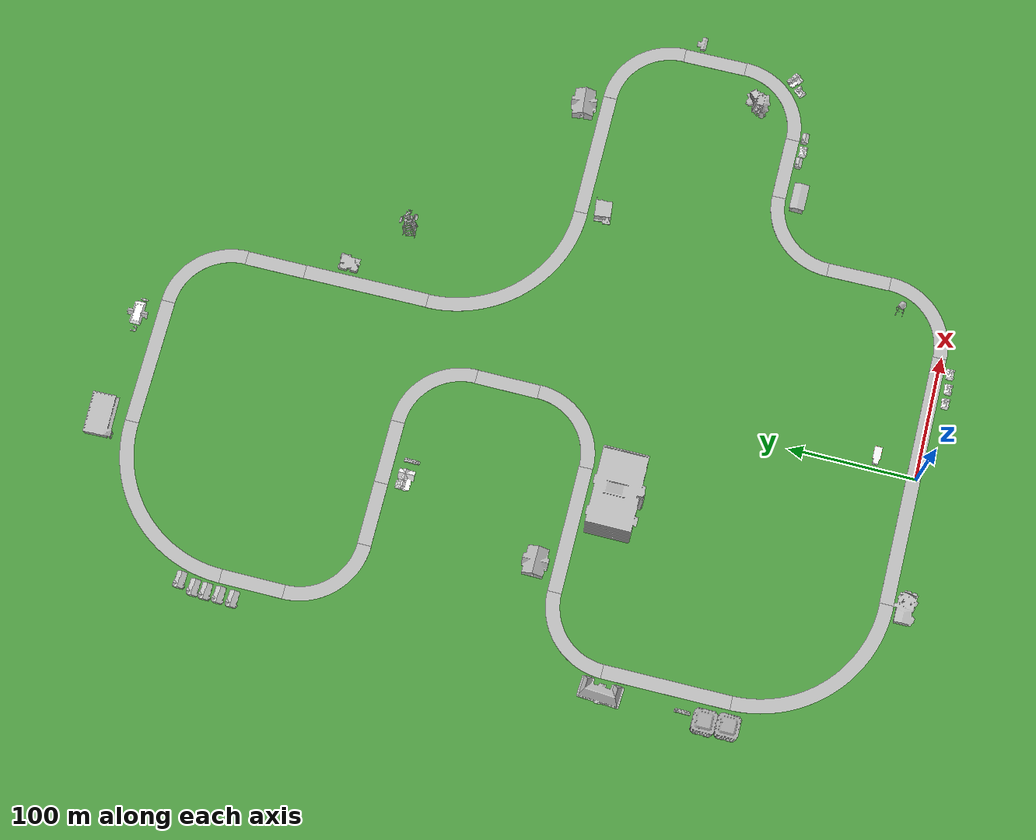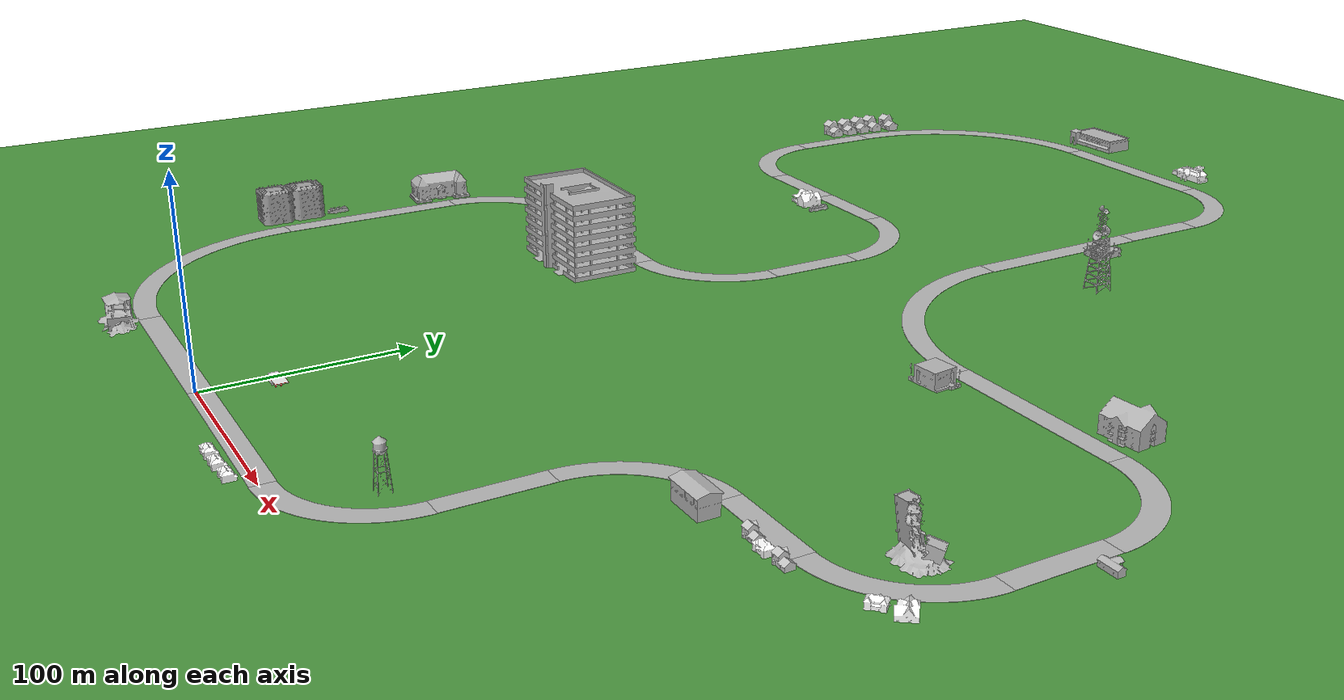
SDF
<sdf version="1.6">
 <world name="default">
  <light name="sun" type="directional">
   <pose>0 0 10 0 -0 0</pose>
   <diffuse>0.8 0.8 0.8 1</diffuse>
   <specular>0.2 0.2 0.2 1</specular>
   <attenuation>
    <range>1000</range>
    <constant>0.9</constant>
    <linear>0.01</linear>
    <quadratic>0.001</quadratic>
   </attenuation>
   <direction>-0.5 0.1 -0.9</direction>
  </light>
  <gravity>0 0 -9.8</gravity>
  <magnetic_field>6e-06 2.3e-05 -4.2e-05</magnetic_field>
  <atmosphere type="adiabatic"/>
  <physics name="default_physics" default="0" type="ode">
   <max_step_size>0.001</max_step_size>
   <real_time_factor>1</real_time_factor>
   <real_time_update_rate>1000</real_time_update_rate>
  </physics>
  <scene><ambient>0.4 0.4 0.4 1</ambient><background>0.7 0.7 0.7 1</background><shadows>1</shadows></scene>
  <audio><device>default</device></audio>
  <spherical_coordinates>
   <surface_model>EARTH_WGS84</surface_model>
   <latitude_deg>0</latitude_deg>
   <longitude_deg>0</longitude_deg>
   <elevation>0</elevation>
   <heading_deg>0</heading_deg>
  </spherical_coordinates>
  <model name="ground_plane">
   <static>1</static>
   <link name="link">
    <collision name="collision">
     <geometry><plane><normal>0 0 1</normal><size>100 100</size></plane></geometry>
     <surface><friction><ode><mu>100</mu><mu2>50</mu2></ode></friction></surface>
    </collision>
    <visual name="visual">
     <cast_shadows>0</cast_shadows>
     <geometry><plane><normal>0 0 1</normal><size>10000 10000</size></plane></geometry>
     <material>
      <script><uri>file://media/materials/scripts/ds_sim.material</uri><name>DSSim/GrassBackground</name></script>
     </material>
    </visual>
   </link>
  </model>
  <model name="(DS) Straight Road - 100m">
   <static>1</static>
   <link name="link">
    <inertial>
     <mass>1</mass>
     <inertia><ixx>1</ixx><iyy>1</iyy><izz>1</izz><ixy>0</ixy><ixz>0</ixz><iyz>0</iyz></inertia>
    </inertial>
    <collision name="collision">
     <geometry><mesh><uri>model://ds_straight_road_100m/meshes/straight_road_100m.dae</uri></mesh></geometry>
    </collision>
    <visual name="visual">
     <geometry><mesh><uri>model://ds_straight_road_100m/meshes/straight_road_100m.dae</uri></mesh></geometry>
    </visual>
   </link>
   <pose>49.9096 11.8522 0 0 -0 0</pose>
  </model>
  <model name="(DS) Curved Road - 50m">
   <static>1</static>
   <link name="link">
    <inertial>
     <mass>1</mass>
     <inertia><ixx>1</ixx><iyy>1</iyy><izz>1</izz><ixy>0</ixy><ixz>0</ixz><iyz>0</iyz></inertia>
    </inertial>
    <collision name="collision">
     <geometry><mesh><uri>model://ds_curved_road_50m/meshes/curved_road_50m.dae</uri></mesh></geometry>
    </collision>
    <visual name="visual">
     <geometry><mesh><uri>model://ds_curved_road_50m/meshes/curved_road_50m.dae</uri></mesh></geometry>
    </visual>
   </link>
   <pose>127.643 23.8963 0 0 -0 0</pose>
  </model>
  <model name="(DS) Straight Road - 50m_0">
   <static>1</static>
   <link name="link">
    <inertial>
     <mass>1</mass>
     <inertia><ixx>1</ixx><iyy>1</iyy><izz>1</izz><ixy>0</ixy><ixz>0</ixz><iyz>0</iyz></inertia>
    </inertial>
    <collision name="collision">
     <geometry><mesh><uri>model://ds_straight_road_50m/meshes/straight_road_50m.dae</uri></mesh></geometry>
    </collision>
    <visual name="visual">
     <geometry><mesh><uri>model://ds_straight_road_50m/meshes/straight_road_50m.dae</uri></mesh></geometry>
    </visual>
   </link>
   <pose>139.539 76.5397 0 0 -0 1.57674</pose>
  </model>
  <model name="(DS) Curved Road - 50m_0">
   <static>1</static>
   <link name="link">
    <inertial>
     <mass>1</mass>
     <inertia><ixx>1</ixx><iyy>1</iyy><izz>1</izz><ixy>0</ixy><ixz>0</ixz><iyz>0</iyz></inertia>
    </inertial>
    <collision name="collision">
     <geometry><mesh><uri>model://ds_curved_road_50m/meshes/curved_road_50m.dae</uri></mesh></geometry>
    </collision>
    <visual name="visual">
     <geometry><mesh><uri>model://ds_curved_road_50m/meshes/curved_road_50m.dae</uri></mesh></geometry>
    </visual>
   </link>
   <pose>171.396 129.489 0 0 0 -3.13305</pose>
  </model>
  <model name="(DS) Straight Road - 50m">
   <static>1</static>
   <link name="link">
    <inertial>
     <mass>1</mass>
     <inertia><ixx>1</ixx><iyy>1</iyy><izz>1</izz><ixy>0</ixy><ixz>0</ixz><iyz>0</iyz></inertia>
    </inertial>
    <collision name="collision">
     <geometry><mesh><uri>model://ds_straight_road_50m/meshes/straight_road_50m.dae</uri></mesh></geometry>
    </collision>
    <visual name="visual">
     <geometry><mesh><uri>model://ds_straight_road_50m/meshes/straight_road_50m.dae</uri></mesh></geometry>
    </visual>
   </link>
   <pose>223.901 161.972 0 0 -0 0</pose>
  </model>
  <model name="(DS) Curved Road - 50m_1">
   <static>1</static>
   <link name="link">
    <inertial>
     <mass>1</mass>
     <inertia><ixx>1</ixx><iyy>1</iyy><izz>1</izz><ixy>0</ixy><ixz>0</ixz><iyz>0</iyz></inertia>
    </inertial>
    <collision name="collision">
     <geometry><mesh><uri>model://ds_curved_road_50m/meshes/curved_road_50m.dae</uri></mesh></geometry>
    </collision>
    <visual name="visual">
     <geometry><mesh><uri>model://ds_curved_road_50m/meshes/curved_road_50m.dae</uri></mesh></geometry>
    </visual>
   </link>
   <pose>276.587 174.017 0 0 -0 0</pose>
  </model>
  <model name="(DS) Straight Road - 50m_1">
   <static>1</static>
   <link name="link">
    <inertial>
     <mass>1</mass>
     <inertia><ixx>1</ixx><iyy>1</iyy><izz>1</izz><ixy>0</ixy><ixz>0</ixz><iyz>0</iyz></inertia>
    </inertial>
    <collision name="collision">
     <geometry><mesh><uri>model://ds_straight_road_50m/meshes/straight_road_50m.dae</uri></mesh></geometry>
    </collision>
    <visual name="visual">
     <geometry><mesh><uri>model://ds_straight_road_50m/meshes/straight_road_50m.dae</uri></mesh></geometry>
    </visual>
   </link>
   <pose>288.528 226.685 0 0 -0 1.57515</pose>
  </model>
  <model name="(DS) Curved Road - 50m_2">
   <static>1</static>
   <link name="link">
    <inertial>
     <mass>1</mass>
     <inertia><ixx>1</ixx><iyy>1</iyy><izz>1</izz><ixy>0</ixy><ixz>0</ixz><iyz>0</iyz></inertia>
    </inertial>
    <collision name="collision">
     <geometry><mesh><uri>model://ds_curved_road_50m/meshes/curved_road_50m.dae</uri></mesh></geometry>
    </collision>
    <visual name="visual">
     <geometry><mesh><uri>model://ds_curved_road_50m/meshes/curved_road_50m.dae</uri></mesh></geometry>
    </visual>
   </link>
   <pose>276.27 279.36 0 0 -0 1.57496</pose>
  </model>
  <model name="(DS) Straight Road - 100m_0">
   <static>1</static>
   <link name="link">
    <inertial>
     <mass>1</mass>
     <inertia><ixx>1</ixx><iyy>1</iyy><izz>1</izz><ixy>0</ixy><ixz>0</ixz><iyz>0</iyz></inertia>
    </inertial>
    <collision name="collision">
     <geometry><mesh><uri>model://ds_straight_road_100m/meshes/straight_road_100m.dae</uri></mesh></geometry>
    </collision>
    <visual name="visual">
     <geometry><mesh><uri>model://ds_straight_road_100m/meshes/straight_road_100m.dae</uri></mesh></geometry>
    </visual>
   </link>
   <pose>198.417 311.496 0 0 -0 0</pose>
  </model>
  <model name="(DS) Curved Road - 100m">
   <static>1</static>
   <link name="link">
    <inertial>
     <mass>1</mass>
     <inertia><ixx>1</ixx><iyy>1</iyy><izz>1</izz><ixy>0</ixy><ixz>0</ixz><iyz>0</iyz></inertia>
    </inertial>
    <collision name="collision">
     <geometry><mesh><uri>model://ds_curved_road_100m/meshes/curved_road_100m.dae</uri></mesh></geometry>
    </collision>
    <visual name="visual">
     <geometry><mesh><uri>model://ds_curved_road_100m/meshes/curved_road_100m.dae</uri></mesh></geometry>
    </visual>
   </link>
   <pose>95.4368 348.224 0 0 0 -1.56472</pose>
  </model>
  <model name="(DS) Straight Road - 100m_1">
   <static>1</static>
   <link name="link">
    <inertial>
     <mass>1</mass>
     <inertia><ixx>1</ixx><iyy>1</iyy><izz>1</izz><ixy>0</ixy><ixz>0</ixz><iyz>0</iyz></inertia>
    </inertial>
    <collision name="collision">
     <geometry><mesh><uri>model://ds_straight_road_100m/meshes/straight_road_100m.dae</uri></mesh></geometry>
    </collision>
    <visual name="visual">
     <geometry><mesh><uri>model://ds_straight_road_100m/meshes/straight_road_100m.dae</uri></mesh></geometry>
    </visual>
   </link>
   <pose>57.875 449.931 0 0 0 -1.56569</pose>
  </model>
  <model name="(DS) Straight Road - 50m_2">
   <static>1</static>
   <link name="link">
    <inertial>
     <mass>1</mass>
     <inertia><ixx>1</ixx><iyy>1</iyy><izz>1</izz><ixy>0</ixy><ixz>0</ixz><iyz>0</iyz></inertia>
    </inertial>
    <collision name="collision">
     <geometry><mesh><uri>model://ds_straight_road_50m/meshes/straight_road_50m.dae</uri></mesh></geometry>
    </collision>
    <visual name="visual">
     <geometry><mesh><uri>model://ds_straight_road_50m/meshes/straight_road_50m.dae</uri></mesh></geometry>
    </visual>
   </link>
   <pose>37.442 522.353 0 0 -0 1.57162</pose>
  </model>
  <model name="(DS) Curved Road - 50m_3">
   <static>1</static>
   <link name="link">
    <inertial>
     <mass>1</mass>
     <inertia><ixx>1</ixx><iyy>1</iyy><izz>1</izz><ixy>0</ixy><ixz>0</ixz><iyz>0</iyz></inertia>
    </inertial>
    <collision name="collision">
     <geometry><mesh><uri>model://ds_curved_road_50m/meshes/curved_road_50m.dae</uri></mesh></geometry>
    </collision>
    <visual name="visual">
     <geometry><mesh><uri>model://ds_curved_road_50m/meshes/curved_road_50m.dae</uri></mesh></geometry>
    </visual>
   </link>
   <pose>25.4987 574.994 0 0 -0 1.56757</pose>
  </model>
  <model name="(DS) Straight Road - 100m_2">
   <static>1</static>
   <link name="link">
    <inertial>
     <mass>1</mass>
     <inertia><ixx>1</ixx><iyy>1</iyy><izz>1</izz><ixy>0</ixy><ixz>0</ixz><iyz>0</iyz></inertia>
    </inertial>
    <collision name="collision">
     <geometry><mesh><uri>model://ds_straight_road_100m/meshes/straight_road_100m.dae</uri></mesh></geometry>
    </collision>
    <visual name="visual">
     <geometry><mesh><uri>model://ds_straight_road_100m/meshes/straight_road_100m.dae</uri></mesh></geometry>
    </visual>
   </link>
   <pose>-52.1167 607.331 0 0 -0 0</pose>
  </model>
  <model name="(DS) Curved Road - 100m_0">
   <static>1</static>
   <link name="link">
    <inertial>
     <mass>1</mass>
     <inertia><ixx>1</ixx><iyy>1</iyy><izz>1</izz><ixy>0</ixy><ixz>0</ixz><iyz>0</iyz></inertia>
    </inertial>
    <collision name="collision">
     <geometry><mesh><uri>model://ds_curved_road_100m/meshes/curved_road_100m.dae</uri></mesh></geometry>
    </collision>
    <visual name="visual">
     <geometry><mesh><uri>model://ds_curved_road_100m/meshes/curved_road_100m.dae</uri></mesh></geometry>
    </visual>
   </link>
   <pose>-154.789 550.168 0 0 -0 3.14064</pose>
  </model>
  <model name="(DS) Straight Road - 50m_3">
   <static>1</static>
   <link name="link">
    <inertial>
     <mass>1</mass>
     <inertia><ixx>1</ixx><iyy>1</iyy><izz>1</izz><ixy>0</ixy><ixz>0</ixz><iyz>0</iyz></inertia>
    </inertial>
    <collision name="collision">
     <geometry><mesh><uri>model://ds_straight_road_50m/meshes/straight_road_50m.dae</uri></mesh></geometry>
    </collision>
    <visual name="visual">
     <geometry><mesh><uri>model://ds_straight_road_50m/meshes/straight_road_50m.dae</uri></mesh></geometry>
    </visual>
   </link>
   <pose>-77.2063 407.873 0 0 -0 0</pose>
  </model>
  <model name="(DS) Curved Road - 50m_4">
   <static>1</static>
   <link name="link">
    <inertial>
     <mass>1</mass>
     <inertia><ixx>1</ixx><iyy>1</iyy><izz>1</izz><ixy>0</ixy><ixz>0</ixz><iyz>0</iyz></inertia>
    </inertial>
    <collision name="collision">
     <geometry><mesh><uri>model://ds_curved_road_50m/meshes/curved_road_50m.dae</uri></mesh></geometry>
    </collision>
    <visual name="visual">
     <geometry><mesh><uri>model://ds_curved_road_50m/meshes/curved_road_50m.dae</uri></mesh></geometry>
    </visual>
   </link>
   <pose>-24.5188 375.63 0 0 -0 1.57109</pose>
  </model>
  <model name="(DS) Straight Road - 50m_4">
   <static>1</static>
   <link name="link">
    <inertial>
     <mass>1</mass>
     <inertia><ixx>1</ixx><iyy>1</iyy><izz>1</izz><ixy>0</ixy><ixz>0</ixz><iyz>0</iyz></inertia>
    </inertial>
    <collision name="collision">
     <geometry><mesh><uri>model://ds_straight_road_50m/meshes/straight_road_50m.dae</uri></mesh></geometry>
    </collision>
    <visual name="visual">
     <geometry><mesh><uri>model://ds_straight_road_50m/meshes/straight_road_50m.dae</uri></mesh></geometry>
    </visual>
   </link>
   <pose>-12.5065 322.961 0 0 -0 1.56858</pose>
  </model>
  <model name="(DS) Curved Road - 50m_5">
   <static>1</static>
   <link name="link">
    <inertial>
     <mass>1</mass>
     <inertia><ixx>1</ixx><iyy>1</iyy><izz>1</izz><ixy>0</ixy><ixz>0</ixz><iyz>0</iyz></inertia>
    </inertial>
    <collision name="collision">
     <geometry><mesh><uri>model://ds_curved_road_50m/meshes/curved_road_50m.dae</uri></mesh></geometry>
    </collision>
    <visual name="visual">
     <geometry><mesh><uri>model://ds_curved_road_50m/meshes/curved_road_50m.dae</uri></mesh></geometry>
    </visual>
   </link>
   <pose>-24.6039 270.284 0 0 -0 0</pose>
  </model>
  <model name="(DS) Straight Road - 100m_3">
   <static>1</static>
   <link name="link">
    <inertial>
     <mass>1</mass>
     <inertia><ixx>1</ixx><iyy>1</iyy><izz>1</izz><ixy>0</ixy><ixz>0</ixz><iyz>0</iyz></inertia>
    </inertial>
    <collision name="collision">
     <geometry><mesh><uri>model://ds_straight_road_100m/meshes/straight_road_100m.dae</uri></mesh></geometry>
    </collision>
    <visual name="visual">
     <geometry><mesh><uri>model://ds_straight_road_100m/meshes/straight_road_100m.dae</uri></mesh></geometry>
    </visual>
   </link>
   <pose>-102.29 258.242 0 0 -0 0</pose>
  </model>
  <model name="(DS) Curved Road - 50m_6">
   <static>1</static>
   <link name="link">
    <inertial>
     <mass>1</mass>
     <inertia><ixx>1</ixx><iyy>1</iyy><izz>1</izz><ixy>0</ixy><ixz>0</ixz><iyz>0</iyz></inertia>
    </inertial>
    <collision name="collision">
     <geometry><mesh><uri>model://ds_curved_road_50m/meshes/curved_road_50m.dae</uri></mesh></geometry>
    </collision>
    <visual name="visual">
     <geometry><mesh><uri>model://ds_curved_road_50m/meshes/curved_road_50m.dae</uri></mesh></geometry>
    </visual>
   </link>
   <pose>-180.011 225.981 0 0 0 -3.14093</pose>
  </model>
  <model name="(DS) Straight Road - 100m_4">
   <static>1</static>
   <link name="link">
    <inertial>
     <mass>1</mass>
     <inertia><ixx>1</ixx><iyy>1</iyy><izz>1</izz><ixy>0</ixy><ixz>0</ixz><iyz>0</iyz></inertia>
    </inertial>
    <collision name="collision">
     <geometry><mesh><uri>model://ds_straight_road_100m/meshes/straight_road_100m.dae</uri></mesh></geometry>
    </collision>
    <visual name="visual">
     <geometry><mesh><uri>model://ds_straight_road_100m/meshes/straight_road_100m.dae</uri></mesh></geometry>
    </visual>
   </link>
   <pose>-212.037 148.91 0 0 -0 1.57473</pose>
  </model>
  <model name="(DS) Curved Road - 100m_2">
   <static>1</static>
   <link name="link">
    <inertial>
     <mass>1</mass>
     <inertia><ixx>1</ixx><iyy>1</iyy><izz>1</izz><ixy>0</ixy><ixz>0</ixz><iyz>0</iyz></inertia>
    </inertial>
    <collision name="collision">
     <geometry><mesh><uri>model://ds_curved_road_100m/meshes/curved_road_100m.dae</uri></mesh></geometry>
    </collision>
    <visual name="visual">
     <geometry><mesh><uri>model://ds_curved_road_100m/meshes/curved_road_100m.dae</uri></mesh></geometry>
    </visual>
   </link>
   <pose>-153.42 47.7272 0 0 0 -1.54857</pose>
  </model>
  <model name="(DS) Straight Road - 100m_5">
   <static>1</static>
   <link name="link">
    <inertial>
     <mass>1</mass>
     <inertia><ixx>1</ixx><iyy>1</iyy><izz>1</izz><ixy>0</ixy><ixz>0</ixz><iyz>0</iyz></inertia>
    </inertial>
    <collision name="collision">
     <geometry><mesh><uri>model://ds_straight_road_100m/meshes/straight_road_100m.dae</uri></mesh></geometry>
    </collision>
    <visual name="visual">
     <geometry><mesh><uri>model://ds_straight_road_100m/meshes/straight_road_100m.dae</uri></mesh></geometry>
    </visual>
   </link>
   <pose>-50.0969 11.8674 0 0 -0 0</pose>
  </model>
  <model name="Gas Station">
   <static>1</static>
   <link name="link">
    <collision name="collision">
     <geometry><mesh><uri>model://gas_station/meshes/gas_station.dae</uri></mesh></geometry>
    </collision>
    <visual name="visual">
     <geometry><mesh><uri>model://gas_station/meshes/gas_station.dae</uri></mesh></geometry>
     <material>
      <script>
       <uri>model://gas_station/materials/scripts</uri>
       <uri>model://gas_station/materials/textures</uri>
       <name>GasStation/Diffuse</name>
      </script>
      <shader type="normal_map_object_space"><normal_map>GasStation_Normal.png</normal_map></shader>
     </material>
    </visual>
   </link>
   <pose>10.5517 33.1043 0 0 -0 0</pose>
  </model>
  <model name="House 2">
   <static>1</static>
   <link name="link">
    <collision name="collision">
     <geometry><mesh><uri>model://house_2/meshes/house_2.dae</uri></mesh></geometry>
    </collision>
    <visual name="visual">
     <geometry><mesh><uri>model://house_2/meshes/house_2.dae</uri></mesh></geometry>
     <material>
      <script>
       <uri>model://house_2/materials/scripts</uri>
       <uri>model://house_2/materials/textures</uri>
       <uri>model://house_1/materials/textures</uri>
       <name>House_2/Diffuse</name>
      </script>
      <shader type="normal_map_object_space">
       <normal_map>model://house_1/materials/textures/House_1_Normal.png</normal_map>
      </shader>
     </material>
    </visual>
   </link>
   <pose>87.4741 -9.12169 0 0 -0 0</pose>
  </model>
  <model name="fire_station">
   <static>1</static>
   <link name="link">
    <collision name="main">
     <pose>0 -0.135 5 0 -0 0</pose>
     <geometry><box><size>19.98 9.68 10</size></box></geometry>
    </collision>
    <collision name="front_top">
     <pose>0 4.957 7 0 -0 0</pose>
     <geometry><box><size>20 0.515 6</size></box></geometry>
    </collision>
    <collision name="column_0">
     <pose>9.333 4.957 2 0 -0 0</pose>
     <geometry><box><size>1.315 0.515 4</size></box></geometry>
    </collision>
    <collision name="column_1">
     <pose>3.33 4.957 2 0 -0 0</pose>
     <geometry><box><size>2.63 0.515 4</size></box></geometry>
    </collision>
    <collision name="column_2">
     <pose>-3.33 4.957 2 0 -0 0</pose>
     <geometry><box><size>2.63 0.515 4</size></box></geometry>
    </collision>
    <collision name="column_3">
     <pose>-9.333 4.957 2 0 -0 0</pose>
     <geometry><box><size>1.315 0.515 4</size></box></geometry>
    </collision>
    <collision name="roof_back">
     <pose>0 -2.742 10.467 0.25 -0 0</pose>
     <geometry><box><size>21.47 6.12 0.28</size></box></geometry>
    </collision>
    <collision name="roof_front">
     <pose>0 3.12 10.467 -0.25 0 0</pose>
     <geometry><box><size>21.47 6.12 0.28</size></box></geometry>
    </collision>
    <collision name="roof_base">
     <pose>0 0.188 9.705 0 -0 0</pose>
     <geometry><box><size>21.47 11.86 0.28</size></box></geometry>
    </collision>
    <collision name="roof_filling_0">
     <pose>0 0.188 9.985 0 -0 0</pose>
     <geometry><box><size>21.47 9.53 0.28</size></box></geometry>
    </collision>
    <collision name="roof_filling_1">
     <pose>0 0.188 10.14 0 -0 0</pose>
     <geometry><box><size>21.47 8.41 0.28</size></box></geometry>
    </collision>
    <collision name="roof_filling_2">
     <pose>0 0.188 10.42 0 -0 0</pose>
     <geometry><box><size>21.47 6.25 0.28</size></box></geometry>
    </collision>
    <collision name="roof_filling_3">
     <pose>0 0.188 10.7 0 -0 0</pose>
     <geometry><box><size>21.47 4.05 0.28</size></box></geometry>
    </collision>
    <collision name="roof_filling_4">
     <pose>0 0.188 10.98 0 -0 0</pose>
     <geometry><box><size>21.47 1.83 0.28</size></box></geometry>
    </collision>
    <visual name="visual">
     <geometry><mesh><uri>model://fire_station/meshes/fire_station.dae</uri></mesh></geometry>
    </visual>
   </link>
   <pose>199.758 136.367 0 0 -0 0</pose>
  </model>
  <model name="water_tower">
   <static>1</static>
   <link name="link">
    <collision name="collision">
     <geometry><mesh><uri>model://water_tower/meshes/water_tower.dae</uri></mesh></geometry>
    </collision>
    <visual name="visual">
     <geometry><mesh><uri>model://water_tower/meshes/water_tower.dae</uri></mesh></geometry>
    </visual>
   </link>
   <pose>128.618 39.9594 0 0 -0 0</pose>
  </model>
  <model name="collapsed_industrial">
   <static>1</static>
   <link name="link">
    <collision name="collision">
     <geometry><mesh><uri>model://collapsed_industrial/meshes/collapsed_industrial.dae</uri></mesh></geometry>
    </collision>
    <visual name="visual">
     <geometry><mesh><uri>model://collapsed_industrial/meshes/collapsed_industrial.dae</uri></mesh></geometry>
    </visual>
   </link>
   <pose>271.111 184.731 0 0 -0 0</pose>
  </model>
  <model name="apartment">
   <static>1</static>
   <link name="link">
    <collision name="collision">
     <geometry><mesh><uri>model://apartment/meshes/apartment.dae</uri></mesh></geometry>
    </collision>
    <visual name="visual">
     <geometry><mesh><uri>model://apartment/meshes/apartment.dae</uri></mesh></geometry>
    </visual>
   </link>
   <pose>236.227 320.212 0 0 0 -1.48032</pose>
  </model>
  <model name="post_office">
   <static>1</static>
   <link name="link">
    <collision name="collision">
     <geometry><mesh><uri>model://post_office/meshes/post_office.dae</uri></mesh></geometry>
    </collision>
    <visual name="visual">
     <geometry><mesh><uri>model://post_office/meshes/post_office.dae</uri></mesh></geometry>
    </visual>
   </link>
   <pose>310.92 238.77 0 0 -0 0</pose>
  </model>
  <model name="police_station">
   <static>1</static>
   <link name="link">
    <collision name="collision_main">
     <pose>0 0 4.28998 0 -0 0</pose>
     <geometry><box><size>13.037 13.037 8.57995</size></box></geometry>
    </collision>
    <collision name="collision_landing">
     <pose>0 0 0.464086 0 -0 0</pose>
     <geometry><box><size>13.037 16.2446 0.928173</size></box></geometry>
    </collision>
    <visual name="visual">
     <geometry><mesh><uri>model://police_station/meshes/police_station.dae</uri></mesh></geometry>
    </visual>
   </link>
   <pose>152.778 284.217 0 0 -0 1.69168</pose>
  </model>
  <model name="radio_tower">
   <static>1</static>
   <link name="link">
    <collision name="collision">
     <geometry><mesh><uri>model://radio_tower/meshes/radio_tower.dae</uri></mesh></geometry>
    </collision>
    <visual name="visual">
     <geometry><mesh><uri>model://radio_tower/meshes/radio_tower.dae</uri></mesh></geometry>
    </visual>
   </link>
   <pose>100.339 428.228 0 0 -0 0</pose>
  </model>
  <model name="collapsed_house">
   <static>1</static>
   <link name="link">
    <collision name="collision">
     <geometry>
      <mesh><scale>1.5 1.5 1.5</scale><uri>model://collapsed_house/meshes/collapsed_house.dae</uri></mesh>
     </geometry>
    </collision>
    <visual name="visual">
     <geometry>
      <mesh><scale>1.5 1.5 1.5</scale><uri>model://collapsed_house/meshes/collapsed_house.dae</uri></mesh>
     </geometry>
    </visual>
   </link>
   <pose>62.1768 467.395 0 0 0 -1.57959</pose>
  </model>
  <model name="Fast Food">
   <static>1</static>
   <link name="link">
    <pose>0 0 3.15931 0 -0 0</pose>
    <collision name="collision">
     <geometry><mesh><scale>3 3 2</scale><uri>model://fast_food/meshes/fast_food.dae</uri></mesh></geometry>
    </collision>
    <visual name="visual">
     <geometry><mesh><scale>3 3 2</scale><uri>model://fast_food/meshes/fast_food.dae</uri></mesh></geometry>
     <material>
      <script>
       <uri>model://fast_food/materials/scripts</uri>
       <uri>model://fast_food/materials/textures</uri>
       <name>FastFood/Diffuse</name>
      </script>
      <shader type="normal_map_tangent_space"><normal_map>FastFood_Normal.png</normal_map></shader>
     </material>
    </visual>
   </link>
   <pose>-17.9707 616.905 0 0 -0 0</pose>
  </model>
  <model name="grocery_store">
   <static>1</static>
   <link name="link">
    <collision name="collision">
     <pose>0 0 4.04605 0 -0 0</pose>
     <geometry><box><size>32.1985 17.5425 8.09209</size></box></geometry>
    </collision>
    <visual name="visual">
     <pose>0 -1.96155 0 0 -0 0</pose>
     <geometry><mesh><uri>model://grocery_store/meshes/grocery_store.dae</uri></mesh></geometry>
    </visual>
   </link>
   <pose>-103.579 621.713 0 0 0 -3.10749</pose>
  </model>
  <model name="House 3">
   <static>1</static>
   <link name="link">
    <collision name="collision">
     <geometry><mesh><uri>model://house_3/meshes/house_3.dae</uri><scale>1.5 1.5 1.5</scale></mesh></geometry>
    </collision>
    <visual name="visual">
     <geometry><mesh><uri>model://house_3/meshes/house_3.dae</uri><scale>1.5 1.5 1.5</scale></mesh></geometry>
     <material>
      <script>
       <uri>model://house_3/materials/scripts</uri>
       <uri>model://house_3/materials/textures</uri>
       <uri>model://house_1/materials/textures</uri>
       <name>House_3/Diffuse</name>
      </script>
      <shader type="normal_map_tangent_space">
       <normal_map>model://house_1/materials/textures/House_1_Normal.png</normal_map>
      </shader>
     </material>
    </visual>
   </link>
   <pose>-216.967 483.082 0 0 -0 0</pose>
  </model>
  <model name="House 1">
   <static>1</static>
   <link name="link">
    <collision name="collision">
     <geometry><mesh><uri>model://house_1/meshes/house_1.dae</uri><scale>1.5 1.5 1.5</scale></mesh></geometry>
    </collision>
    <visual name="visual">
     <geometry><mesh><uri>model://house_1/meshes/house_1.dae</uri><scale>1.5 1.5 1.5</scale></mesh></geometry>
     <material>
      <script>
       <uri>model://house_1/materials/scripts</uri>
       <uri>model://house_1/materials/textures</uri>
       <name>House_1/Diffuse</name>
      </script>
      <shader type="normal_map_tangent_space"><normal_map>House_1_Normal.png</normal_map></shader>
     </material>
    </visual>
   </link>
   <pose>-95.8776 380.507 0 0 -0 0</pose>
  </model>
  <model name="fire_truck">
   <static>1</static>
   <link name="link">
    <collision name="collision">
     <geometry>
      <mesh><scale>0.1 0.1 0.1</scale><uri>model://fire_truck/meshes/fire_truck.obj</uri></mesh>
     </geometry>
    </collision>
    <visual name="visual">
     <geometry>
      <mesh><scale>0.1 0.1 0.1</scale><uri>model://fire_truck/meshes/fire_truck.obj</uri></mesh>
     </geometry>
    </visual>
   </link>
   <pose>-80.3893 379.244 0 0 -0 0</pose>
  </model>
  <model name="Office Building">
   <static>1</static>
   <link name="link">
    <collision name="collision">
     <geometry><mesh><uri>model://office_building/meshes/office_building.dae</uri></mesh></geometry>
    </collision>
    <visual name="visual">
     <geometry><mesh><uri>model://office_building/meshes/office_building.dae</uri></mesh></geometry>
    </visual>
   </link>
   <pose>-221.471 98.4245 0 0 -0 0</pose>
  </model>
  <model name="parking_garage">
   <static>1</static>
   <link name="link">
    <collision name="collision">
     <geometry><mesh><uri>model://parking_garage/meshes/parking_garage.dae</uri></mesh></geometry>
    </collision>
    <visual name="visual">
     <geometry><mesh><uri>model://parking_garage/meshes/parking_garage.dae</uri></mesh></geometry>
    </visual>
   </link>
   <pose>-71.674 220.048 0 0 -0 0</pose>
  </model>
  <model name="apartment_0">
   <static>1</static>
   <link name="link">
    <collision name="collision">
     <geometry><mesh><uri>model://apartment/meshes/apartment.dae</uri></mesh></geometry>
    </collision>
    <visual name="visual">
     <geometry><mesh><uri>model://apartment/meshes/apartment.dae</uri></mesh></geometry>
    </visual>
   </link>
   <pose>-134.081 267.714 0 0 0 -1.57608</pose>
  </model>
  <model name="school">
   <static>1</static>
   <link name="link">
    <collision name="collision">
     <geometry><mesh><uri>model://school/meshes/school.dae</uri></mesh></geometry>
    </collision>
    <visual name="visual"><geometry><mesh><uri>model://school/meshes/school.dae</uri></mesh></geometry></visual>
   </link>
   <pose>-220.328 196.684 0 0 -0 1.50784</pose>
  </model>
  <model name="House 1_0">
   <static>1</static>
   <link name="link">
    <collision name="collision">
     <geometry><mesh><uri>model://house_1/meshes/house_1.dae</uri></mesh></geometry>
    </collision>
    <visual name="visual">
     <geometry><mesh><uri>model://house_1/meshes/house_1.dae</uri></mesh></geometry>
     <material>
      <script>
       <uri>model://house_1/materials/scripts</uri>
       <uri>model://house_1/materials/textures</uri>
       <name>House_1/Diffuse</name>
      </script>
      <shader type="normal_map_object_space"><normal_map>House_1_Normal.png</normal_map></shader>
     </material>
    </visual>
   </link>
   <pose>298.023 160.972 0 0 0 -0.64782</pose>
  </model>
  <model name="House 2_0">
   <static>1</static>
   <link name="link">
    <collision name="collision">
     <geometry><mesh><uri>model://house_2/meshes/house_2.dae</uri></mesh></geometry>
    </collision>
    <visual name="visual">
     <geometry><mesh><uri>model://house_2/meshes/house_2.dae</uri></mesh></geometry>
     <material>
      <script>
       <uri>model://house_2/materials/scripts</uri>
       <uri>model://house_2/materials/textures</uri>
       <uri>model://house_1/materials/textures</uri>
       <name>House_2/Diffuse</name>
      </script>
      <shader type="normal_map_object_space">
       <normal_map>model://house_1/materials/textures/House_1_Normal.png</normal_map>
      </shader>
     </material>
    </visual>
   </link>
   <pose>288.97 154.146 0 0 -0 0.759476</pose>
  </model>
  <model name="House 3_0">
   <static>1</static>
   <link name="link">
    <collision name="collision">
     <geometry><mesh><uri>model://house_3/meshes/house_3.dae</uri></mesh></geometry>
    </collision>
    <visual name="visual">
     <geometry><mesh><uri>model://house_3/meshes/house_3.dae</uri></mesh></geometry>
     <material>
      <script>
       <uri>model://house_3/materials/scripts</uri>
       <uri>model://house_3/materials/textures</uri>
       <uri>model://house_1/materials/textures</uri>
       <name>House_3/Diffuse</name>
      </script>
      <shader type="normal_map_object_space">
       <normal_map>model://house_1/materials/textures/House_1_Normal.png</normal_map>
      </shader>
     </material>
    </visual>
   </link>
   <pose>251.745 142.363 0 0 -0 0</pose>
  </model>
  <model name="fire_truck_0">
   <static>1</static>
   <link name="link">
    <collision name="collision">
     <geometry>
      <mesh><scale>0.1 0.1 0.1</scale><uri>model://fire_truck/meshes/fire_truck.obj</uri></mesh>
     </geometry>
    </collision>
    <visual name="visual">
     <geometry>
      <mesh><scale>0.1 0.1 0.1</scale><uri>model://fire_truck/meshes/fire_truck.obj</uri></mesh>
     </geometry>
    </visual>
   </link>
   <pose>-217.293 133.857 0 0 -0 0</pose>
  </model>
  <model name="Office Building_0">
   <static>1</static>
   <link name="link">
    <collision name="collision">
     <geometry><mesh><uri>model://office_building/meshes/office_building.dae</uri></mesh></geometry>
    </collision>
    <visual name="visual">
     <geometry><mesh><uri>model://office_building/meshes/office_building.dae</uri></mesh></geometry>
    </visual>
   </link>
   <pose>-222.202 116.423 0 0 -0 0</pose>
  </model>
  <model name="collapsed_fire_station">
   <static>1</static>
   <link name="link">
    <collision name="collision">
     <geometry><mesh><uri>model://collapsed_fire_station/meshes/collapsed_fire_station.dae</uri></mesh></geometry>
    </collision>
    <visual name="visual">
     <geometry><mesh><uri>model://collapsed_fire_station/meshes/collapsed_fire_station.dae</uri></mesh></geometry>
    </visual>
   </link>
   <pose>-99.3771 -12.5972 0 0 -0 0</pose>
  </model>
  <model name="House 2_clone">
   <static>1</static>
   <link name="link">
    <collision name="collision">
     <geometry><mesh><uri>model://house_2/meshes/house_2.dae</uri></mesh></geometry>
    </collision>
    <visual name="visual">
     <geometry><mesh><uri>model://house_2/meshes/house_2.dae</uri></mesh></geometry>
     <material>
      <script>
       <uri>model://house_2/materials/scripts</uri>
       <uri>model://house_2/materials/textures</uri>
       <uri>model://house_1/materials/textures</uri>
       <name>House_2/Diffuse</name>
      </script>
      <shader type="normal_map_object_space">
       <normal_map>model://house_1/materials/textures/House_1_Normal.png</normal_map>
      </shader>
     </material>
    </visual>
   </link>
   <pose>75.311 -9.96007 0 0 -0 0</pose>
  </model>
  <model name="House 2_clone_0">
   <static>1</static>
   <link name="link">
    <collision name="collision">
     <geometry><mesh><uri>model://house_2/meshes/house_2.dae</uri></mesh></geometry>
    </collision>
    <visual name="visual">
     <geometry><mesh><uri>model://house_2/meshes/house_2.dae</uri></mesh></geometry>
     <material>
      <script>
       <uri>model://house_2/materials/scripts</uri>
       <uri>model://house_2/materials/textures</uri>
       <uri>model://house_1/materials/textures</uri>
       <name>House_2/Diffuse</name>
      </script>
      <shader type="normal_map_object_space">
       <normal_map>model://house_1/materials/textures/House_1_Normal.png</normal_map>
      </shader>
     </material>
    </visual>
   </link>
   <pose>63.5054 -10.0879 0 0 -0 0</pose>
  </model>
  <model name="House 2_clone_1">
   <static>1</static>
   <link name="link">
    <collision name="collision">
     <geometry><mesh><uri>model://house_2/meshes/house_2.dae</uri></mesh></geometry>
    </collision>
    <visual name="visual">
     <geometry><mesh><uri>model://house_2/meshes/house_2.dae</uri></mesh></geometry>
     <material>
      <script>
       <uri>model://house_2/materials/scripts</uri>
       <uri>model://house_2/materials/textures</uri>
       <uri>model://house_1/materials/textures</uri>
       <name>House_2/Diffuse</name>
      </script>
      <shader type="normal_map_object_space">
       <normal_map>model://house_1/materials/textures/House_1_Normal.png</normal_map>
      </shader>
     </material>
    </visual>
   </link>
   <pose>239.392 141.204 0 0 -0 0</pose>
  </model>
  <model name="House 3_0_clone">
   <static>1</static>
   <link name="link">
    <collision name="collision">
     <geometry><mesh><uri>model://house_3/meshes/house_3.dae</uri></mesh></geometry>
    </collision>
    <visual name="visual">
     <geometry><mesh><uri>model://house_3/meshes/house_3.dae</uri></mesh></geometry>
     <material>
      <script>
       <uri>model://house_3/materials/scripts</uri>
       <uri>model://house_3/materials/textures</uri>
       <uri>model://house_1/materials/textures</uri>
       <name>House_3/Diffuse</name>
      </script>
      <shader type="normal_map_object_space">
       <normal_map>model://house_1/materials/textures/House_1_Normal.png</normal_map>
      </shader>
     </material>
    </visual>
   </link>
   <pose>230.373 143.048 0 0 -0 0</pose>
  </model>
  <model name="House 3_clone">
   <static>1</static>
   <link name="link">
    <collision name="collision">
     <geometry><mesh><uri>model://house_3/meshes/house_3.dae</uri><scale>1.5 1.5 1.5</scale></mesh></geometry>
    </collision>
    <visual name="visual">
     <geometry><mesh><uri>model://house_3/meshes/house_3.dae</uri><scale>1.5 1.5 1.5</scale></mesh></geometry>
     <material>
      <script>
       <uri>model://house_3/materials/scripts</uri>
       <uri>model://house_3/materials/textures</uri>
       <uri>model://house_1/materials/textures</uri>
       <name>House_3/Diffuse</name>
      </script>
      <shader type="normal_map_tangent_space">
       <normal_map>model://house_1/materials/textures/House_1_Normal.png</normal_map>
      </shader>
     </material>
    </visual>
   </link>
   <pose>-216.454 494.022 0 0 -0 0</pose>
  </model>
  <model name="House 3_clone_0">
   <static>1</static>
   <link name="link">
    <collision name="collision">
     <geometry><mesh><uri>model://house_3/meshes/house_3.dae</uri><scale>1.5 1.5 1.5</scale></mesh></geometry>
    </collision>
    <visual name="visual">
     <geometry><mesh><uri>model://house_3/meshes/house_3.dae</uri><scale>1.5 1.5 1.5</scale></mesh></geometry>
     <material>
      <script>
       <uri>model://house_3/materials/scripts</uri>
       <uri>model://house_3/materials/textures</uri>
       <uri>model://house_1/materials/textures</uri>
       <name>House_3/Diffuse</name>
      </script>
      <shader type="normal_map_tangent_space">
       <normal_map>model://house_1/materials/textures/House_1_Normal.png</normal_map>
      </shader>
     </material>
    </visual>
   </link>
   <pose>-216.27 504.567 0 0 -0 0</pose>
  </model>
  <model name="House 3_clone_1">
   <static>1</static>
   <link name="link">
    <collision name="collision">
     <geometry><mesh><uri>model://house_3/meshes/house_3.dae</uri><scale>1.5 1.5 1.5</scale></mesh></geometry>
    </collision>
    <visual name="visual">
     <geometry><mesh><uri>model://house_3/meshes/house_3.dae</uri><scale>1.5 1.5 1.5</scale></mesh></geometry>
     <material>
      <script>
       <uri>model://house_3/materials/scripts</uri>
       <uri>model://house_3/materials/textures</uri>
       <uri>model://house_1/materials/textures</uri>
       <name>House_3/Diffuse</name>
      </script>
      <shader type="normal_map_tangent_space">
       <normal_map>model://house_1/materials/textures/House_1_Normal.png</normal_map>
      </shader>
     </material>
    </visual>
   </link>
   <pose>-215.59 514.129 0 0 -0 0</pose>
  </model>
  <model name="House 3_clone_2">
   <static>1</static>
   <link name="link">
    <collision name="collision">
     <geometry><mesh><uri>model://house_3/meshes/house_3.dae</uri><scale>1.5 1.5 1.5</scale></mesh></geometry>
    </collision>
    <visual name="visual">
     <geometry><mesh><uri>model://house_3/meshes/house_3.dae</uri><scale>1.5 1.5 1.5</scale></mesh></geometry>
     <material>
      <script>
       <uri>model://house_3/materials/scripts</uri>
       <uri>model://house_3/materials/textures</uri>
       <uri>model://house_1/materials/textures</uri>
       <name>House_3/Diffuse</name>
      </script>
      <shader type="normal_map_tangent_space">
       <normal_map>model://house_1/materials/textures/House_1_Normal.png</normal_map>
      </shader>
     </material>
    </visual>
   </link>
   <pose>-212.355 525.742 0 0 -0 0</pose>
  </model>
  <model name="(DS) Straight Road - 50m_5">
   <static>1</static>
   <link name="link">
    <inertial>
     <mass>1</mass>
     <inertia><ixx>1</ixx><iyy>1</iyy><izz>1</izz><ixy>0</ixy><ixz>0</ixz><iyz>0</iyz></inertia>
    </inertial>
    <collision name="collision">
     <geometry><mesh><uri>model://ds_straight_road_50m/meshes/straight_road_50m.dae</uri></mesh></geometry>
    </collision>
    <visual name="visual">
     <geometry><mesh><uri>model://ds_straight_road_50m/meshes/straight_road_50m.dae</uri></mesh></geometry>
    </visual>
   </link>
   <pose>-212.146 472.628 0 0 -0 1.56978</pose>
  </model>
  <model name="(DS) Straight Road - 50m_6">
   <static>1</static>
   <link name="link">
    <inertial>
     <mass>1</mass>
     <inertia><ixx>1</ixx><iyy>1</iyy><izz>1</izz><ixy>0</ixy><ixz>0</ixz><iyz>0</iyz></inertia>
    </inertial>
    <collision name="collision">
     <geometry><mesh><uri>model://ds_straight_road_50m/meshes/straight_road_50m.dae</uri></mesh></geometry>
    </collision>
    <visual name="visual">
     <geometry><mesh><uri>model://ds_straight_road_50m/meshes/straight_road_50m.dae</uri></mesh></geometry>
    </visual>
   </link>
   <pose>-127.153 407.879 0 0 -0 0</pose>
  </model>
  <model name="(DS) Curved Road - 50m_7">
   <static>1</static>
   <link name="link">
    <inertial>
     <mass>1</mass>
     <inertia><ixx>1</ixx><iyy>1</iyy><izz>1</izz><ixy>0</ixy><ixz>0</ixz><iyz>0</iyz></inertia>
    </inertial>
    <collision name="collision">
     <geometry><mesh><uri>model://ds_curved_road_50m/meshes/curved_road_50m.dae</uri></mesh></geometry>
    </collision>
    <visual name="visual">
     <geometry><mesh><uri>model://ds_curved_road_50m/meshes/curved_road_50m.dae</uri></mesh></geometry>
    </visual>
   </link>
   <pose>-179.88 419.922 0 0 0 -1.57034</pose>
  </model>
 </world>
</sdf>
